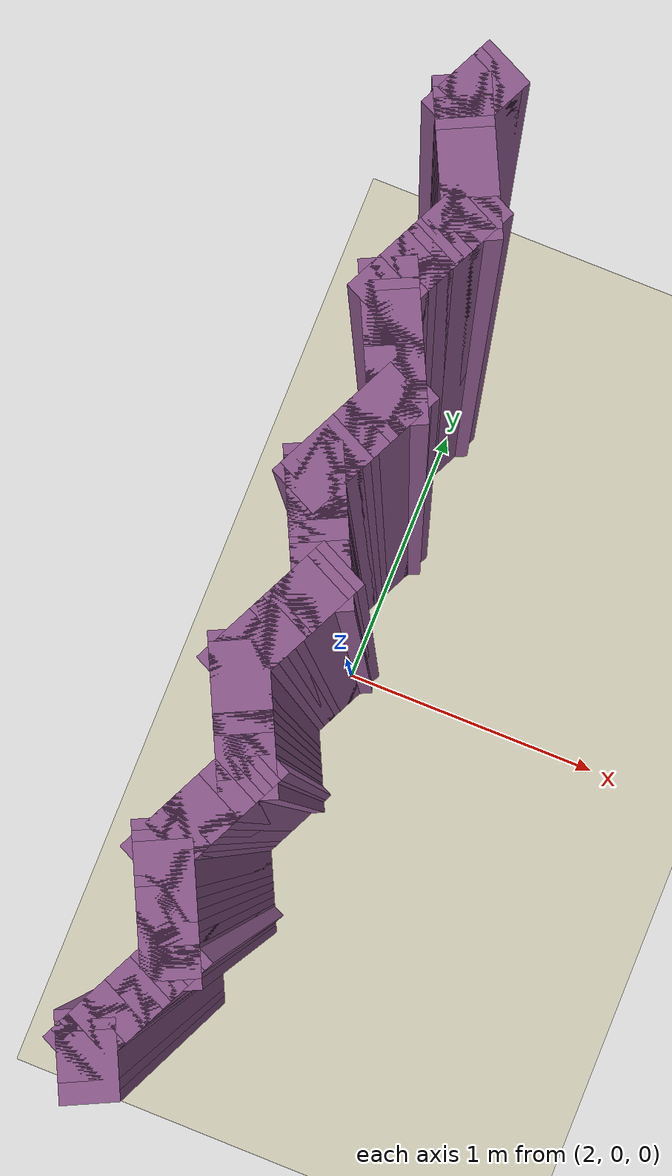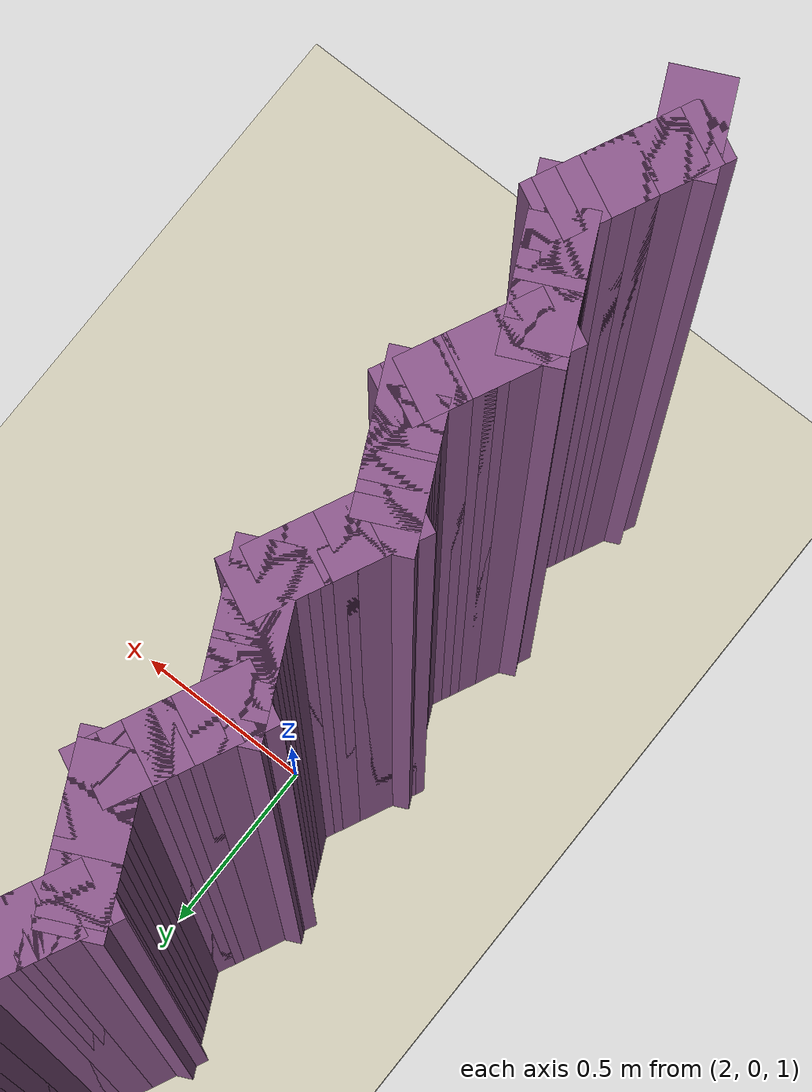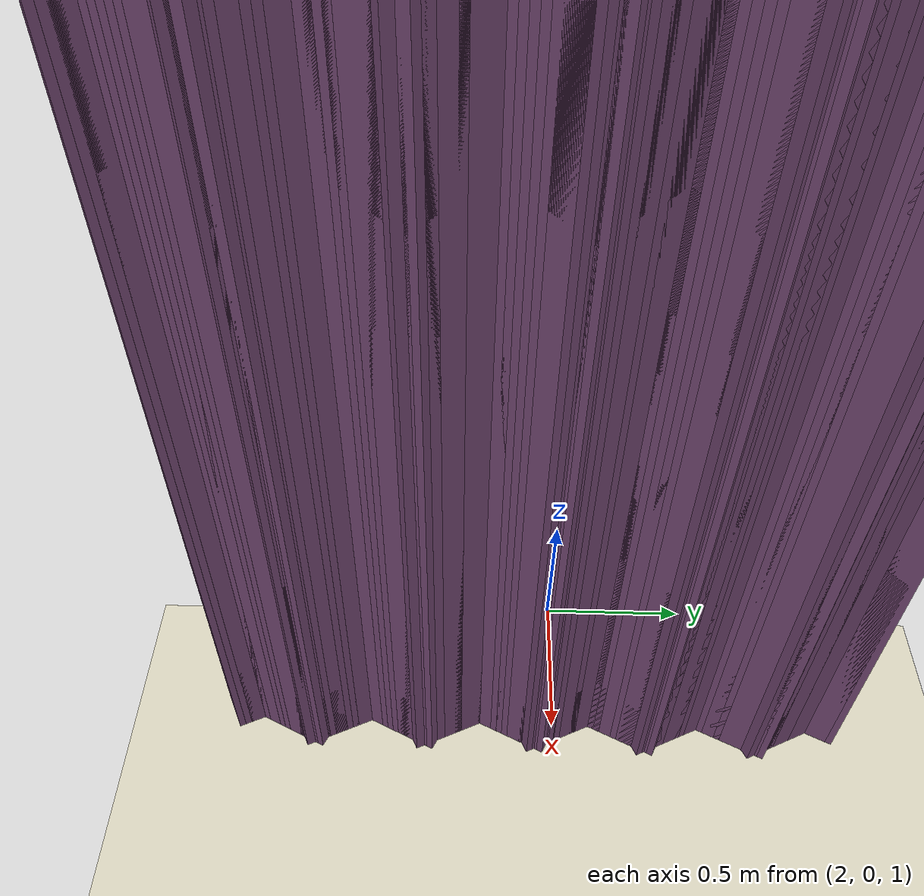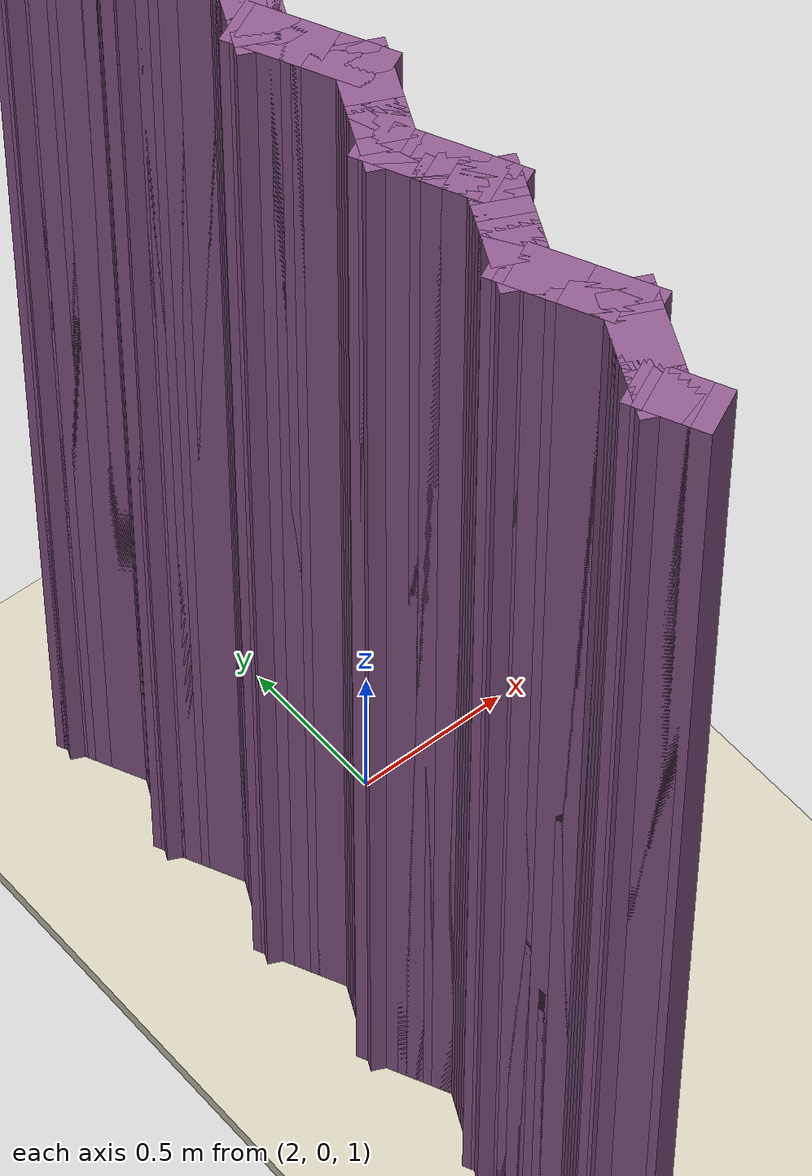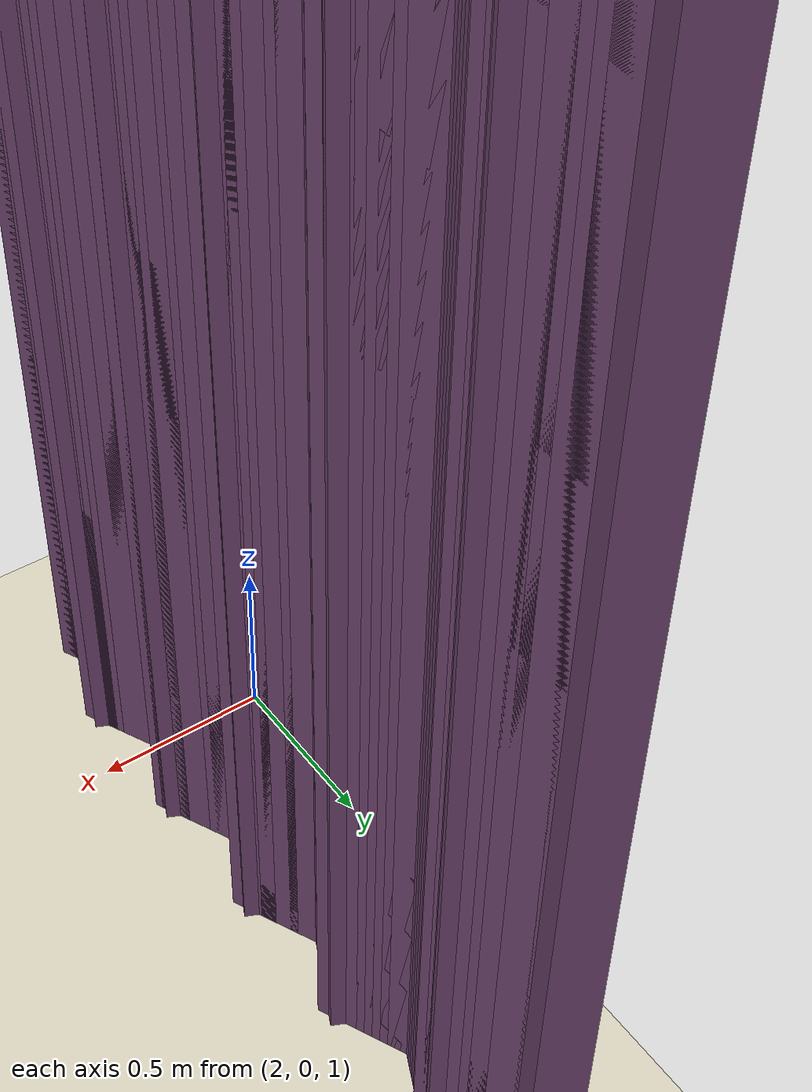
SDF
<sdf version="1.9">
 <world name="p5_serrated">
  <model name="floor">
   <static>true</static>
   <link name="link">
    <collision name="c"><geometry><box><size>10.0 12.0 0.05</size></box></geometry></collision>
    <visual name="v">
     <geometry><box><size>10.0 12.0 0.05</size></box></geometry>
     <material><ambient>0.82 0.80 0.72 1</ambient><diffuse>0.82 0.80 0.72 1</diffuse></material>
    </visual>
   </link>
  </model>
  <model name="wall_107">
   <static>true</static>
   <pose>1.9100 -1.3125 2.0000 0 0 2.01832</pose>
   <link name="link">
    <collision name="c"><geometry><box><size>0.1777 0.1500 4.0000</size></box></geometry></collision>
    <visual name="v">
     <geometry><box><size>0.1777 0.1500 4.0000</size></box></geometry>
     <material><ambient>0.55 0.35 0.55 1</ambient><diffuse>0.55 0.35 0.55 1</diffuse></material>
    </visual>
   </link>
  </model>
  <model name="wall_108">
   <static>true</static>
   <pose>1.8980 -1.2875 2.0000 0 0 2.01832</pose>
   <link name="link">
    <collision name="c"><geometry><box><size>0.1777 0.1500 4.0000</size></box></geometry></collision>
    <visual name="v">
     <geometry><box><size>0.1777 0.1500 4.0000</size></box></geometry>
     <material><ambient>0.55 0.35 0.55 1</ambient><diffuse>0.55 0.35 0.55 1</diffuse></material>
    </visual>
   </link>
  </model>
  <model name="wall_109">
   <static>true</static>
   <pose>1.8860 -1.2625 2.0000 0 0 2.01832</pose>
   <link name="link">
    <collision name="c"><geometry><box><size>0.1777 0.1500 4.0000</size></box></geometry></collision>
    <visual name="v">
     <geometry><box><size>0.1777 0.1500 4.0000</size></box></geometry>
     <material><ambient>0.55 0.35 0.55 1</ambient><diffuse>0.55 0.35 0.55 1</diffuse></material>
    </visual>
   </link>
  </model>
  <model name="wall_110">
   <static>true</static>
   <pose>1.8860 -1.2375 2.0000 0 0 1.12328</pose>
   <link name="link">
    <collision name="c"><geometry><box><size>0.1777 0.1500 4.0000</size></box></geometry></collision>
    <visual name="v">
     <geometry><box><size>0.1777 0.1500 4.0000</size></box></geometry>
     <material><ambient>0.55 0.35 0.55 1</ambient><diffuse>0.55 0.35 0.55 1</diffuse></material>
    </visual>
   </link>
  </model>
  <model name="wall_111">
   <static>true</static>
   <pose>1.8980 -1.2125 2.0000 0 0 1.12328</pose>
   <link name="link">
    <collision name="c"><geometry><box><size>0.1777 0.1500 4.0000</size></box></geometry></collision>
    <visual name="v">
     <geometry><box><size>0.1777 0.1500 4.0000</size></box></geometry>
     <material><ambient>0.55 0.35 0.55 1</ambient><diffuse>0.55 0.35 0.55 1</diffuse></material>
    </visual>
   </link>
  </model>
  <model name="wall_112">
   <static>true</static>
   <pose>1.9100 -1.1875 2.0000 0 0 1.12328</pose>
   <link name="link">
    <collision name="c"><geometry><box><size>0.1777 0.1500 4.0000</size></box></geometry></collision>
    <visual name="v">
     <geometry><box><size>0.1777 0.1500 4.0000</size></box></geometry>
     <material><ambient>0.55 0.35 0.55 1</ambient><diffuse>0.55 0.35 0.55 1</diffuse></material>
    </visual>
   </link>
  </model>
  <model name="wall_113">
   <static>true</static>
   <pose>1.9220 -1.1625 2.0000 0 0 1.12328</pose>
   <link name="link">
    <collision name="c"><geometry><box><size>0.1777 0.1500 4.0000</size></box></geometry></collision>
    <visual name="v">
     <geometry><box><size>0.1777 0.1500 4.0000</size></box></geometry>
     <material><ambient>0.55 0.35 0.55 1</ambient><diffuse>0.55 0.35 0.55 1</diffuse></material>
    </visual>
   </link>
  </model>
  <model name="wall_114">
   <static>true</static>
   <pose>1.9340 -1.1375 2.0000 0 0 1.12328</pose>
   <link name="link">
    <collision name="c"><geometry><box><size>0.1777 0.1500 4.0000</size></box></geometry></collision>
    <visual name="v">
     <geometry><box><size>0.1777 0.1500 4.0000</size></box></geometry>
     <material><ambient>0.55 0.35 0.55 1</ambient><diffuse>0.55 0.35 0.55 1</diffuse></material>
    </visual>
   </link>
  </model>
  <model name="wall_115">
   <static>true</static>
   <pose>1.9460 -1.1125 2.0000 0 0 1.12328</pose>
   <link name="link">
    <collision name="c"><geometry><box><size>0.1777 0.1500 4.0000</size></box></geometry></collision>
    <visual name="v">
     <geometry><box><size>0.1777 0.1500 4.0000</size></box></geometry>
     <material><ambient>0.55 0.35 0.55 1</ambient><diffuse>0.55 0.35 0.55 1</diffuse></material>
    </visual>
   </link>
  </model>
  <model name="wall_116">
   <static>true</static>
   <pose>1.9580 -1.0875 2.0000 0 0 1.12328</pose>
   <link name="link">
    <collision name="c"><geometry><box><size>0.1777 0.1500 4.0000</size></box></geometry></collision>
    <visual name="v">
     <geometry><box><size>0.1777 0.1500 4.0000</size></box></geometry>
     <material><ambient>0.55 0.35 0.55 1</ambient><diffuse>0.55 0.35 0.55 1</diffuse></material>
    </visual>
   </link>
  </model>
  <model name="wall_117">
   <static>true</static>
   <pose>1.9700 -1.0625 2.0000 0 0 1.12328</pose>
   <link name="link">
    <collision name="c"><geometry><box><size>0.1777 0.1500 4.0000</size></box></geometry></collision>
    <visual name="v">
     <geometry><box><size>0.1777 0.1500 4.0000</size></box></geometry>
     <material><ambient>0.55 0.35 0.55 1</ambient><diffuse>0.55 0.35 0.55 1</diffuse></material>
    </visual>
   </link>
  </model>
  <model name="wall_118">
   <static>true</static>
   <pose>1.9820 -1.0375 2.0000 0 0 1.12328</pose>
   <link name="link">
    <collision name="c"><geometry><box><size>0.1777 0.1500 4.0000</size></box></geometry></collision>
    <visual name="v">
     <geometry><box><size>0.1777 0.1500 4.0000</size></box></geometry>
     <material><ambient>0.55 0.35 0.55 1</ambient><diffuse>0.55 0.35 0.55 1</diffuse></material>
    </visual>
   </link>
  </model>
  <model name="wall_119">
   <static>true</static>
   <pose>1.9940 -1.0125 2.0000 0 0 1.12328</pose>
   <link name="link">
    <collision name="c"><geometry><box><size>0.1777 0.1500 4.0000</size></box></geometry></collision>
    <visual name="v">
     <geometry><box><size>0.1777 0.1500 4.0000</size></box></geometry>
     <material><ambient>0.55 0.35 0.55 1</ambient><diffuse>0.55 0.35 0.55 1</diffuse></material>
    </visual>
   </link>
  </model>
  <model name="wall_120">
   <static>true</static>
   <pose>1.9940 -0.9875 2.0000 0 0 2.01832</pose>
   <link name="link">
    <collision name="c"><geometry><box><size>0.1777 0.1500 4.0000</size></box></geometry></collision>
    <visual name="v">
     <geometry><box><size>0.1777 0.1500 4.0000</size></box></geometry>
     <material><ambient>0.55 0.35 0.55 1</ambient><diffuse>0.55 0.35 0.55 1</diffuse></material>
    </visual>
   </link>
  </model>
  <model name="wall_121">
   <static>true</static>
   <pose>1.9820 -0.9625 2.0000 0 0 2.01832</pose>
   <link name="link">
    <collision name="c"><geometry><box><size>0.1777 0.1500 4.0000</size></box></geometry></collision>
    <visual name="v">
     <geometry><box><size>0.1777 0.1500 4.0000</size></box></geometry>
     <material><ambient>0.55 0.35 0.55 1</ambient><diffuse>0.55 0.35 0.55 1</diffuse></material>
    </visual>
   </link>
  </model>
  <model name="wall_122">
   <static>true</static>
   <pose>1.9700 -0.9375 2.0000 0 0 2.01832</pose>
   <link name="link">
    <collision name="c"><geometry><box><size>0.1777 0.1500 4.0000</size></box></geometry></collision>
    <visual name="v">
     <geometry><box><size>0.1777 0.1500 4.0000</size></box></geometry>
     <material><ambient>0.55 0.35 0.55 1</ambient><diffuse>0.55 0.35 0.55 1</diffuse></material>
    </visual>
   </link>
  </model>
  <model name="wall_123">
   <static>true</static>
   <pose>1.9580 -0.9125 2.0000 0 0 2.01832</pose>
   <link name="link">
    <collision name="c"><geometry><box><size>0.1777 0.1500 4.0000</size></box></geometry></collision>
    <visual name="v">
     <geometry><box><size>0.1777 0.1500 4.0000</size></box></geometry>
     <material><ambient>0.55 0.35 0.55 1</ambient><diffuse>0.55 0.35 0.55 1</diffuse></material>
    </visual>
   </link>
  </model>
  <model name="wall_124">
   <static>true</static>
   <pose>1.9460 -0.8875 2.0000 0 0 2.01832</pose>
   <link name="link">
    <collision name="c"><geometry><box><size>0.1777 0.1500 4.0000</size></box></geometry></collision>
    <visual name="v">
     <geometry><box><size>0.1777 0.1500 4.0000</size></box></geometry>
     <material><ambient>0.55 0.35 0.55 1</ambient><diffuse>0.55 0.35 0.55 1</diffuse></material>
    </visual>
   </link>
  </model>
  <model name="wall_125">
   <static>true</static>
   <pose>1.9340 -0.8625 2.0000 0 0 2.01832</pose>
   <link name="link">
    <collision name="c"><geometry><box><size>0.1777 0.1500 4.0000</size></box></geometry></collision>
    <visual name="v">
     <geometry><box><size>0.1777 0.1500 4.0000</size></box></geometry>
     <material><ambient>0.55 0.35 0.55 1</ambient><diffuse>0.55 0.35 0.55 1</diffuse></material>
    </visual>
   </link>
  </model>
  <model name="wall_126">
   <static>true</static>
   <pose>1.9220 -0.8375 2.0000 0 0 2.01832</pose>
   <link name="link">
    <collision name="c"><geometry><box><size>0.1777 0.1500 4.0000</size></box></geometry></collision>
    <visual name="v">
     <geometry><box><size>0.1777 0.1500 4.0000</size></box></geometry>
     <material><ambient>0.55 0.35 0.55 1</ambient><diffuse>0.55 0.35 0.55 1</diffuse></material>
    </visual>
   </link>
  </model>
  <model name="wall_127">
   <static>true</static>
   <pose>1.9100 -0.8125 2.0000 0 0 2.01832</pose>
   <link name="link">
    <collision name="c"><geometry><box><size>0.1777 0.1500 4.0000</size></box></geometry></collision>
    <visual name="v">
     <geometry><box><size>0.1777 0.1500 4.0000</size></box></geometry>
     <material><ambient>0.55 0.35 0.55 1</ambient><diffuse>0.55 0.35 0.55 1</diffuse></material>
    </visual>
   </link>
  </model>
  <model name="wall_128">
   <static>true</static>
   <pose>1.8980 -0.7875 2.0000 0 0 2.01832</pose>
   <link name="link">
    <collision name="c"><geometry><box><size>0.1777 0.1500 4.0000</size></box></geometry></collision>
    <visual name="v">
     <geometry><box><size>0.1777 0.1500 4.0000</size></box></geometry>
     <material><ambient>0.55 0.35 0.55 1</ambient><diffuse>0.55 0.35 0.55 1</diffuse></material>
    </visual>
   </link>
  </model>
  <model name="wall_129">
   <static>true</static>
   <pose>1.8860 -0.7625 2.0000 0 0 2.01832</pose>
   <link name="link">
    <collision name="c"><geometry><box><size>0.1777 0.1500 4.0000</size></box></geometry></collision>
    <visual name="v">
     <geometry><box><size>0.1777 0.1500 4.0000</size></box></geometry>
     <material><ambient>0.55 0.35 0.55 1</ambient><diffuse>0.55 0.35 0.55 1</diffuse></material>
    </visual>
   </link>
  </model>
  <model name="wall_130">
   <static>true</static>
   <pose>1.8860 -0.7375 2.0000 0 0 1.12328</pose>
   <link name="link">
    <collision name="c"><geometry><box><size>0.1777 0.1500 4.0000</size></box></geometry></collision>
    <visual name="v">
     <geometry><box><size>0.1777 0.1500 4.0000</size></box></geometry>
     <material><ambient>0.55 0.35 0.55 1</ambient><diffuse>0.55 0.35 0.55 1</diffuse></material>
    </visual>
   </link>
  </model>
  <model name="wall_131">
   <static>true</static>
   <pose>1.8980 -0.7125 2.0000 0 0 1.12328</pose>
   <link name="link">
    <collision name="c"><geometry><box><size>0.1777 0.1500 4.0000</size></box></geometry></collision>
    <visual name="v">
     <geometry><box><size>0.1777 0.1500 4.0000</size></box></geometry>
     <material><ambient>0.55 0.35 0.55 1</ambient><diffuse>0.55 0.35 0.55 1</diffuse></material>
    </visual>
   </link>
  </model>
  <model name="wall_132">
   <static>true</static>
   <pose>1.9100 -0.6875 2.0000 0 0 1.12328</pose>
   <link name="link">
    <collision name="c"><geometry><box><size>0.1777 0.1500 4.0000</size></box></geometry></collision>
    <visual name="v">
     <geometry><box><size>0.1777 0.1500 4.0000</size></box></geometry>
     <material><ambient>0.55 0.35 0.55 1</ambient><diffuse>0.55 0.35 0.55 1</diffuse></material>
    </visual>
   </link>
  </model>
  <model name="wall_133">
   <static>true</static>
   <pose>1.9220 -0.6625 2.0000 0 0 1.12328</pose>
   <link name="link">
    <collision name="c"><geometry><box><size>0.1777 0.1500 4.0000</size></box></geometry></collision>
    <visual name="v">
     <geometry><box><size>0.1777 0.1500 4.0000</size></box></geometry>
     <material><ambient>0.55 0.35 0.55 1</ambient><diffuse>0.55 0.35 0.55 1</diffuse></material>
    </visual>
   </link>
  </model>
  <model name="wall_134">
   <static>true</static>
   <pose>1.9340 -0.6375 2.0000 0 0 1.12328</pose>
   <link name="link">
    <collision name="c"><geometry><box><size>0.1777 0.1500 4.0000</size></box></geometry></collision>
    <visual name="v">
     <geometry><box><size>0.1777 0.1500 4.0000</size></box></geometry>
     <material><ambient>0.55 0.35 0.55 1</ambient><diffuse>0.55 0.35 0.55 1</diffuse></material>
    </visual>
   </link>
  </model>
  <model name="wall_135">
   <static>true</static>
   <pose>1.9460 -0.6125 2.0000 0 0 1.12328</pose>
   <link name="link">
    <collision name="c"><geometry><box><size>0.1777 0.1500 4.0000</size></box></geometry></collision>
    <visual name="v">
     <geometry><box><size>0.1777 0.1500 4.0000</size></box></geometry>
     <material><ambient>0.55 0.35 0.55 1</ambient><diffuse>0.55 0.35 0.55 1</diffuse></material>
    </visual>
   </link>
  </model>
  <model name="wall_136">
   <static>true</static>
   <pose>1.9580 -0.5875 2.0000 0 0 1.12328</pose>
   <link name="link">
    <collision name="c"><geometry><box><size>0.1777 0.1500 4.0000</size></box></geometry></collision>
    <visual name="v">
     <geometry><box><size>0.1777 0.1500 4.0000</size></box></geometry>
     <material><ambient>0.55 0.35 0.55 1</ambient><diffuse>0.55 0.35 0.55 1</diffuse></material>
    </visual>
   </link>
  </model>
  <model name="wall_137">
   <static>true</static>
   <pose>1.9700 -0.5625 2.0000 0 0 1.12328</pose>
   <link name="link">
    <collision name="c"><geometry><box><size>0.1777 0.1500 4.0000</size></box></geometry></collision>
    <visual name="v">
     <geometry><box><size>0.1777 0.1500 4.0000</size></box></geometry>
     <material><ambient>0.55 0.35 0.55 1</ambient><diffuse>0.55 0.35 0.55 1</diffuse></material>
    </visual>
   </link>
  </model>
  <model name="wall_138">
   <static>true</static>
   <pose>1.9820 -0.5375 2.0000 0 0 1.12328</pose>
   <link name="link">
    <collision name="c"><geometry><box><size>0.1777 0.1500 4.0000</size></box></geometry></collision>
    <visual name="v">
     <geometry><box><size>0.1777 0.1500 4.0000</size></box></geometry>
     <material><ambient>0.55 0.35 0.55 1</ambient><diffuse>0.55 0.35 0.55 1</diffuse></material>
    </visual>
   </link>
  </model>
  <model name="wall_139">
   <static>true</static>
   <pose>1.9940 -0.5125 2.0000 0 0 1.12328</pose>
   <link name="link">
    <collision name="c"><geometry><box><size>0.1777 0.1500 4.0000</size></box></geometry></collision>
    <visual name="v">
     <geometry><box><size>0.1777 0.1500 4.0000</size></box></geometry>
     <material><ambient>0.55 0.35 0.55 1</ambient><diffuse>0.55 0.35 0.55 1</diffuse></material>
    </visual>
   </link>
  </model>
  <model name="wall_140">
   <static>true</static>
   <pose>1.9940 -0.4875 2.0000 0 0 2.01832</pose>
   <link name="link">
    <collision name="c"><geometry><box><size>0.1777 0.1500 4.0000</size></box></geometry></collision>
    <visual name="v">
     <geometry><box><size>0.1777 0.1500 4.0000</size></box></geometry>
     <material><ambient>0.55 0.35 0.55 1</ambient><diffuse>0.55 0.35 0.55 1</diffuse></material>
    </visual>
   </link>
  </model>
  <model name="wall_141">
   <static>true</static>
   <pose>1.9820 -0.4625 2.0000 0 0 2.01832</pose>
   <link name="link">
    <collision name="c"><geometry><box><size>0.1777 0.1500 4.0000</size></box></geometry></collision>
    <visual name="v">
     <geometry><box><size>0.1777 0.1500 4.0000</size></box></geometry>
     <material><ambient>0.55 0.35 0.55 1</ambient><diffuse>0.55 0.35 0.55 1</diffuse></material>
    </visual>
   </link>
  </model>
  <model name="wall_142">
   <static>true</static>
   <pose>1.9700 -0.4375 2.0000 0 0 2.01832</pose>
   <link name="link">
    <collision name="c"><geometry><box><size>0.1777 0.1500 4.0000</size></box></geometry></collision>
    <visual name="v">
     <geometry><box><size>0.1777 0.1500 4.0000</size></box></geometry>
     <material><ambient>0.55 0.35 0.55 1</ambient><diffuse>0.55 0.35 0.55 1</diffuse></material>
    </visual>
   </link>
  </model>
  <model name="wall_143">
   <static>true</static>
   <pose>1.9580 -0.4125 2.0000 0 0 2.01832</pose>
   <link name="link">
    <collision name="c"><geometry><box><size>0.1777 0.1500 4.0000</size></box></geometry></collision>
    <visual name="v">
     <geometry><box><size>0.1777 0.1500 4.0000</size></box></geometry>
     <material><ambient>0.55 0.35 0.55 1</ambient><diffuse>0.55 0.35 0.55 1</diffuse></material>
    </visual>
   </link>
  </model>
  <model name="wall_144">
   <static>true</static>
   <pose>1.9460 -0.3875 2.0000 0 0 2.01832</pose>
   <link name="link">
    <collision name="c"><geometry><box><size>0.1777 0.1500 4.0000</size></box></geometry></collision>
    <visual name="v">
     <geometry><box><size>0.1777 0.1500 4.0000</size></box></geometry>
     <material><ambient>0.55 0.35 0.55 1</ambient><diffuse>0.55 0.35 0.55 1</diffuse></material>
    </visual>
   </link>
  </model>
  <model name="wall_145">
   <static>true</static>
   <pose>1.9340 -0.3625 2.0000 0 0 2.01832</pose>
   <link name="link">
    <collision name="c"><geometry><box><size>0.1777 0.1500 4.0000</size></box></geometry></collision>
    <visual name="v">
     <geometry><box><size>0.1777 0.1500 4.0000</size></box></geometry>
     <material><ambient>0.55 0.35 0.55 1</ambient><diffuse>0.55 0.35 0.55 1</diffuse></material>
    </visual>
   </link>
  </model>
  <model name="wall_146">
   <static>true</static>
   <pose>1.9220 -0.3375 2.0000 0 0 2.01832</pose>
   <link name="link">
    <collision name="c"><geometry><box><size>0.1777 0.1500 4.0000</size></box></geometry></collision>
    <visual name="v">
     <geometry><box><size>0.1777 0.1500 4.0000</size></box></geometry>
     <material><ambient>0.55 0.35 0.55 1</ambient><diffuse>0.55 0.35 0.55 1</diffuse></material>
    </visual>
   </link>
  </model>
  <model name="wall_147">
   <static>true</static>
   <pose>1.9100 -0.3125 2.0000 0 0 2.01832</pose>
   <link name="link">
    <collision name="c"><geometry><box><size>0.1777 0.1500 4.0000</size></box></geometry></collision>
    <visual name="v">
     <geometry><box><size>0.1777 0.1500 4.0000</size></box></geometry>
     <material><ambient>0.55 0.35 0.55 1</ambient><diffuse>0.55 0.35 0.55 1</diffuse></material>
    </visual>
   </link>
  </model>
  <model name="wall_148">
   <static>true</static>
   <pose>1.8980 -0.2875 2.0000 0 0 2.01832</pose>
   <link name="link">
    <collision name="c"><geometry><box><size>0.1777 0.1500 4.0000</size></box></geometry></collision>
    <visual name="v">
     <geometry><box><size>0.1777 0.1500 4.0000</size></box></geometry>
     <material><ambient>0.55 0.35 0.55 1</ambient><diffuse>0.55 0.35 0.55 1</diffuse></material>
    </visual>
   </link>
  </model>
  <model name="wall_149">
   <static>true</static>
   <pose>1.8860 -0.2625 2.0000 0 0 2.01832</pose>
   <link name="link">
    <collision name="c"><geometry><box><size>0.1777 0.1500 4.0000</size></box></geometry></collision>
    <visual name="v">
     <geometry><box><size>0.1777 0.1500 4.0000</size></box></geometry>
     <material><ambient>0.55 0.35 0.55 1</ambient><diffuse>0.55 0.35 0.55 1</diffuse></material>
    </visual>
   </link>
  </model>
  <model name="wall_150">
   <static>true</static>
   <pose>1.8860 -0.2375 2.0000 0 0 1.12328</pose>
   <link name="link">
    <collision name="c"><geometry><box><size>0.1777 0.1500 4.0000</size></box></geometry></collision>
    <visual name="v">
     <geometry><box><size>0.1777 0.1500 4.0000</size></box></geometry>
     <material><ambient>0.55 0.35 0.55 1</ambient><diffuse>0.55 0.35 0.55 1</diffuse></material>
    </visual>
   </link>
  </model>
  <model name="wall_151">
   <static>true</static>
   <pose>1.8980 -0.2125 2.0000 0 0 1.12328</pose>
   <link name="link">
    <collision name="c"><geometry><box><size>0.1777 0.1500 4.0000</size></box></geometry></collision>
    <visual name="v">
     <geometry><box><size>0.1777 0.1500 4.0000</size></box></geometry>
     <material><ambient>0.55 0.35 0.55 1</ambient><diffuse>0.55 0.35 0.55 1</diffuse></material>
    </visual>
   </link>
  </model>
  <model name="wall_152">
   <static>true</static>
   <pose>1.9100 -0.1875 2.0000 0 0 1.12328</pose>
   <link name="link">
    <collision name="c"><geometry><box><size>0.1777 0.1500 4.0000</size></box></geometry></collision>
    <visual name="v">
     <geometry><box><size>0.1777 0.1500 4.0000</size></box></geometry>
     <material><ambient>0.55 0.35 0.55 1</ambient><diffuse>0.55 0.35 0.55 1</diffuse></material>
    </visual>
   </link>
  </model>
  <model name="wall_153">
   <static>true</static>
   <pose>1.9220 -0.1625 2.0000 0 0 1.12328</pose>
   <link name="link">
    <collision name="c"><geometry><box><size>0.1777 0.1500 4.0000</size></box></geometry></collision>
    <visual name="v">
     <geometry><box><size>0.1777 0.1500 4.0000</size></box></geometry>
     <material><ambient>0.55 0.35 0.55 1</ambient><diffuse>0.55 0.35 0.55 1</diffuse></material>
    </visual>
   </link>
  </model>
  <model name="wall_154">
   <static>true</static>
   <pose>1.9340 -0.1375 2.0000 0 0 1.12328</pose>
   <link name="link">
    <collision name="c"><geometry><box><size>0.1777 0.1500 4.0000</size></box></geometry></collision>
    <visual name="v">
     <geometry><box><size>0.1777 0.1500 4.0000</size></box></geometry>
     <material><ambient>0.55 0.35 0.55 1</ambient><diffuse>0.55 0.35 0.55 1</diffuse></material>
    </visual>
   </link>
  </model>
  <model name="wall_155">
   <static>true</static>
   <pose>1.9460 -0.1125 2.0000 0 0 1.12328</pose>
   <link name="link">
    <collision name="c"><geometry><box><size>0.1777 0.1500 4.0000</size></box></geometry></collision>
    <visual name="v">
     <geometry><box><size>0.1777 0.1500 4.0000</size></box></geometry>
     <material><ambient>0.55 0.35 0.55 1</ambient><diffuse>0.55 0.35 0.55 1</diffuse></material>
    </visual>
   </link>
  </model>
  <model name="wall_156">
   <static>true</static>
   <pose>1.9580 -0.0875 2.0000 0 0 1.12328</pose>
   <link name="link">
    <collision name="c"><geometry><box><size>0.1777 0.1500 4.0000</size></box></geometry></collision>
    <visual name="v">
     <geometry><box><size>0.1777 0.1500 4.0000</size></box></geometry>
     <material><ambient>0.55 0.35 0.55 1</ambient><diffuse>0.55 0.35 0.55 1</diffuse></material>
    </visual>
   </link>
  </model>
  <model name="wall_157">
   <static>true</static>
   <pose>1.9700 -0.0625 2.0000 0 0 1.12328</pose>
   <link name="link">
    <collision name="c"><geometry><box><size>0.1777 0.1500 4.0000</size></box></geometry></collision>
    <visual name="v">
     <geometry><box><size>0.1777 0.1500 4.0000</size></box></geometry>
     <material><ambient>0.55 0.35 0.55 1</ambient><diffuse>0.55 0.35 0.55 1</diffuse></material>
    </visual>
   </link>
  </model>
  <model name="wall_158">
   <static>true</static>
   <pose>1.9820 -0.0375 2.0000 0 0 1.12328</pose>
   <link name="link">
    <collision name="c"><geometry><box><size>0.1777 0.1500 4.0000</size></box></geometry></collision>
    <visual name="v">
     <geometry><box><size>0.1777 0.1500 4.0000</size></box></geometry>
     <material><ambient>0.55 0.35 0.55 1</ambient><diffuse>0.55 0.35 0.55 1</diffuse></material>
    </visual>
   </link>
  </model>
  <model name="wall_159">
   <static>true</static>
   <pose>1.9940 -0.0125 2.0000 0 0 1.12328</pose>
   <link name="link">
    <collision name="c"><geometry><box><size>0.1777 0.1500 4.0000</size></box></geometry></collision>
    <visual name="v">
     <geometry><box><size>0.1777 0.1500 4.0000</size></box></geometry>
     <material><ambient>0.55 0.35 0.55 1</ambient><diffuse>0.55 0.35 0.55 1</diffuse></material>
    </visual>
   </link>
  </model>
  <model name="wall_160">
   <static>true</static>
   <pose>1.9940 0.0125 2.0000 0 0 2.01832</pose>
   <link name="link">
    <collision name="c"><geometry><box><size>0.1777 0.1500 4.0000</size></box></geometry></collision>
    <visual name="v">
     <geometry><box><size>0.1777 0.1500 4.0000</size></box></geometry>
     <material><ambient>0.55 0.35 0.55 1</ambient><diffuse>0.55 0.35 0.55 1</diffuse></material>
    </visual>
   </link>
  </model>
  <model name="wall_161">
   <static>true</static>
   <pose>1.9820 0.0375 2.0000 0 0 2.01832</pose>
   <link name="link">
    <collision name="c"><geometry><box><size>0.1777 0.1500 4.0000</size></box></geometry></collision>
    <visual name="v">
     <geometry><box><size>0.1777 0.1500 4.0000</size></box></geometry>
     <material><ambient>0.55 0.35 0.55 1</ambient><diffuse>0.55 0.35 0.55 1</diffuse></material>
    </visual>
   </link>
  </model>
  <model name="wall_162">
   <static>true</static>
   <pose>1.9700 0.0625 2.0000 0 0 2.01832</pose>
   <link name="link">
    <collision name="c"><geometry><box><size>0.1777 0.1500 4.0000</size></box></geometry></collision>
    <visual name="v">
     <geometry><box><size>0.1777 0.1500 4.0000</size></box></geometry>
     <material><ambient>0.55 0.35 0.55 1</ambient><diffuse>0.55 0.35 0.55 1</diffuse></material>
    </visual>
   </link>
  </model>
  <model name="wall_163">
   <static>true</static>
   <pose>1.9580 0.0875 2.0000 0 0 2.01832</pose>
   <link name="link">
    <collision name="c"><geometry><box><size>0.1777 0.1500 4.0000</size></box></geometry></collision>
    <visual name="v">
     <geometry><box><size>0.1777 0.1500 4.0000</size></box></geometry>
     <material><ambient>0.55 0.35 0.55 1</ambient><diffuse>0.55 0.35 0.55 1</diffuse></material>
    </visual>
   </link>
  </model>
  <model name="wall_164">
   <static>true</static>
   <pose>1.9460 0.1125 2.0000 0 0 2.01832</pose>
   <link name="link">
    <collision name="c"><geometry><box><size>0.1777 0.1500 4.0000</size></box></geometry></collision>
    <visual name="v">
     <geometry><box><size>0.1777 0.1500 4.0000</size></box></geometry>
     <material><ambient>0.55 0.35 0.55 1</ambient><diffuse>0.55 0.35 0.55 1</diffuse></material>
    </visual>
   </link>
  </model>
  <model name="wall_165">
   <static>true</static>
   <pose>1.9340 0.1375 2.0000 0 0 2.01832</pose>
   <link name="link">
    <collision name="c"><geometry><box><size>0.1777 0.1500 4.0000</size></box></geometry></collision>
    <visual name="v">
     <geometry><box><size>0.1777 0.1500 4.0000</size></box></geometry>
     <material><ambient>0.55 0.35 0.55 1</ambient><diffuse>0.55 0.35 0.55 1</diffuse></material>
    </visual>
   </link>
  </model>
  <model name="wall_166">
   <static>true</static>
   <pose>1.9220 0.1625 2.0000 0 0 2.01832</pose>
   <link name="link">
    <collision name="c"><geometry><box><size>0.1777 0.1500 4.0000</size></box></geometry></collision>
    <visual name="v">
     <geometry><box><size>0.1777 0.1500 4.0000</size></box></geometry>
     <material><ambient>0.55 0.35 0.55 1</ambient><diffuse>0.55 0.35 0.55 1</diffuse></material>
    </visual>
   </link>
  </model>
  <model name="wall_167">
   <static>true</static>
   <pose>1.9100 0.1875 2.0000 0 0 2.01832</pose>
   <link name="link">
    <collision name="c"><geometry><box><size>0.1777 0.1500 4.0000</size></box></geometry></collision>
    <visual name="v">
     <geometry><box><size>0.1777 0.1500 4.0000</size></box></geometry>
     <material><ambient>0.55 0.35 0.55 1</ambient><diffuse>0.55 0.35 0.55 1</diffuse></material>
    </visual>
   </link>
  </model>
  <model name="wall_168">
   <static>true</static>
   <pose>1.8980 0.2125 2.0000 0 0 2.01832</pose>
   <link name="link">
    <collision name="c"><geometry><box><size>0.1777 0.1500 4.0000</size></box></geometry></collision>
    <visual name="v">
     <geometry><box><size>0.1777 0.1500 4.0000</size></box></geometry>
     <material><ambient>0.55 0.35 0.55 1</ambient><diffuse>0.55 0.35 0.55 1</diffuse></material>
    </visual>
   </link>
  </model>
  <model name="wall_169">
   <static>true</static>
   <pose>1.8860 0.2375 2.0000 0 0 2.01832</pose>
   <link name="link">
    <collision name="c"><geometry><box><size>0.1777 0.1500 4.0000</size></box></geometry></collision>
    <visual name="v">
     <geometry><box><size>0.1777 0.1500 4.0000</size></box></geometry>
     <material><ambient>0.55 0.35 0.55 1</ambient><diffuse>0.55 0.35 0.55 1</diffuse></material>
    </visual>
   </link>
  </model>
  <model name="wall_170">
   <static>true</static>
   <pose>1.8860 0.2625 2.0000 0 0 1.12328</pose>
   <link name="link">
    <collision name="c"><geometry><box><size>0.1777 0.1500 4.0000</size></box></geometry></collision>
    <visual name="v">
     <geometry><box><size>0.1777 0.1500 4.0000</size></box></geometry>
     <material><ambient>0.55 0.35 0.55 1</ambient><diffuse>0.55 0.35 0.55 1</diffuse></material>
    </visual>
   </link>
  </model>
  <model name="wall_171">
   <static>true</static>
   <pose>1.8980 0.2875 2.0000 0 0 1.12328</pose>
   <link name="link">
    <collision name="c"><geometry><box><size>0.1777 0.1500 4.0000</size></box></geometry></collision>
    <visual name="v">
     <geometry><box><size>0.1777 0.1500 4.0000</size></box></geometry>
     <material><ambient>0.55 0.35 0.55 1</ambient><diffuse>0.55 0.35 0.55 1</diffuse></material>
    </visual>
   </link>
  </model>
  <model name="wall_172">
   <static>true</static>
   <pose>1.9100 0.3125 2.0000 0 0 1.12328</pose>
   <link name="link">
    <collision name="c"><geometry><box><size>0.1777 0.1500 4.0000</size></box></geometry></collision>
    <visual name="v">
     <geometry><box><size>0.1777 0.1500 4.0000</size></box></geometry>
     <material><ambient>0.55 0.35 0.55 1</ambient><diffuse>0.55 0.35 0.55 1</diffuse></material>
    </visual>
   </link>
  </model>
  <model name="wall_173">
   <static>true</static>
   <pose>1.9220 0.3375 2.0000 0 0 1.12328</pose>
   <link name="link">
    <collision name="c"><geometry><box><size>0.1777 0.1500 4.0000</size></box></geometry></collision>
    <visual name="v">
     <geometry><box><size>0.1777 0.1500 4.0000</size></box></geometry>
     <material><ambient>0.55 0.35 0.55 1</ambient><diffuse>0.55 0.35 0.55 1</diffuse></material>
    </visual>
   </link>
  </model>
  <model name="wall_174">
   <static>true</static>
   <pose>1.9340 0.3625 2.0000 0 0 1.12328</pose>
   <link name="link">
    <collision name="c"><geometry><box><size>0.1777 0.1500 4.0000</size></box></geometry></collision>
    <visual name="v">
     <geometry><box><size>0.1777 0.1500 4.0000</size></box></geometry>
     <material><ambient>0.55 0.35 0.55 1</ambient><diffuse>0.55 0.35 0.55 1</diffuse></material>
    </visual>
   </link>
  </model>
  <model name="wall_175">
   <static>true</static>
   <pose>1.9460 0.3875 2.0000 0 0 1.12328</pose>
   <link name="link">
    <collision name="c"><geometry><box><size>0.1777 0.1500 4.0000</size></box></geometry></collision>
    <visual name="v">
     <geometry><box><size>0.1777 0.1500 4.0000</size></box></geometry>
     <material><ambient>0.55 0.35 0.55 1</ambient><diffuse>0.55 0.35 0.55 1</diffuse></material>
    </visual>
   </link>
  </model>
  <model name="wall_176">
   <static>true</static>
   <pose>1.9580 0.4125 2.0000 0 0 1.12328</pose>
   <link name="link">
    <collision name="c"><geometry><box><size>0.1777 0.1500 4.0000</size></box></geometry></collision>
    <visual name="v">
     <geometry><box><size>0.1777 0.1500 4.0000</size></box></geometry>
     <material><ambient>0.55 0.35 0.55 1</ambient><diffuse>0.55 0.35 0.55 1</diffuse></material>
    </visual>
   </link>
  </model>
  <model name="wall_177">
   <static>true</static>
   <pose>1.9700 0.4375 2.0000 0 0 1.12328</pose>
   <link name="link">
    <collision name="c"><geometry><box><size>0.1777 0.1500 4.0000</size></box></geometry></collision>
    <visual name="v">
     <geometry><box><size>0.1777 0.1500 4.0000</size></box></geometry>
     <material><ambient>0.55 0.35 0.55 1</ambient><diffuse>0.55 0.35 0.55 1</diffuse></material>
    </visual>
   </link>
  </model>
  <model name="wall_178">
   <static>true</static>
   <pose>1.9820 0.4625 2.0000 0 0 1.12328</pose>
   <link name="link">
    <collision name="c"><geometry><box><size>0.1777 0.1500 4.0000</size></box></geometry></collision>
    <visual name="v">
     <geometry><box><size>0.1777 0.1500 4.0000</size></box></geometry>
     <material><ambient>0.55 0.35 0.55 1</ambient><diffuse>0.55 0.35 0.55 1</diffuse></material>
    </visual>
   </link>
  </model>
  <model name="wall_179">
   <static>true</static>
   <pose>1.9940 0.4875 2.0000 0 0 1.12328</pose>
   <link name="link">
    <collision name="c"><geometry><box><size>0.1777 0.1500 4.0000</size></box></geometry></collision>
    <visual name="v">
     <geometry><box><size>0.1777 0.1500 4.0000</size></box></geometry>
     <material><ambient>0.55 0.35 0.55 1</ambient><diffuse>0.55 0.35 0.55 1</diffuse></material>
    </visual>
   </link>
  </model>
  <model name="wall_180">
   <static>true</static>
   <pose>1.9940 0.5125 2.0000 0 0 2.01832</pose>
   <link name="link">
    <collision name="c"><geometry><box><size>0.1777 0.1500 4.0000</size></box></geometry></collision>
    <visual name="v">
     <geometry><box><size>0.1777 0.1500 4.0000</size></box></geometry>
     <material><ambient>0.55 0.35 0.55 1</ambient><diffuse>0.55 0.35 0.55 1</diffuse></material>
    </visual>
   </link>
  </model>
  <model name="wall_181">
   <static>true</static>
   <pose>1.9820 0.5375 2.0000 0 0 2.01832</pose>
   <link name="link">
    <collision name="c"><geometry><box><size>0.1777 0.1500 4.0000</size></box></geometry></collision>
    <visual name="v">
     <geometry><box><size>0.1777 0.1500 4.0000</size></box></geometry>
     <material><ambient>0.55 0.35 0.55 1</ambient><diffuse>0.55 0.35 0.55 1</diffuse></material>
    </visual>
   </link>
  </model>
  <model name="wall_182">
   <static>true</static>
   <pose>1.9700 0.5625 2.0000 0 0 2.01832</pose>
   <link name="link">
    <collision name="c"><geometry><box><size>0.1777 0.1500 4.0000</size></box></geometry></collision>
    <visual name="v">
     <geometry><box><size>0.1777 0.1500 4.0000</size></box></geometry>
     <material><ambient>0.55 0.35 0.55 1</ambient><diffuse>0.55 0.35 0.55 1</diffuse></material>
    </visual>
   </link>
  </model>
  <model name="wall_183">
   <static>true</static>
   <pose>1.9580 0.5875 2.0000 0 0 2.01832</pose>
   <link name="link">
    <collision name="c"><geometry><box><size>0.1777 0.1500 4.0000</size></box></geometry></collision>
    <visual name="v">
     <geometry><box><size>0.1777 0.1500 4.0000</size></box></geometry>
     <material><ambient>0.55 0.35 0.55 1</ambient><diffuse>0.55 0.35 0.55 1</diffuse></material>
    </visual>
   </link>
  </model>
  <model name="wall_184">
   <static>true</static>
   <pose>1.9460 0.6125 2.0000 0 0 2.01832</pose>
   <link name="link">
    <collision name="c"><geometry><box><size>0.1777 0.1500 4.0000</size></box></geometry></collision>
    <visual name="v">
     <geometry><box><size>0.1777 0.1500 4.0000</size></box></geometry>
     <material><ambient>0.55 0.35 0.55 1</ambient><diffuse>0.55 0.35 0.55 1</diffuse></material>
    </visual>
   </link>
  </model>
  <model name="wall_185">
   <static>true</static>
   <pose>1.9340 0.6375 2.0000 0 0 2.01832</pose>
   <link name="link">
    <collision name="c"><geometry><box><size>0.1777 0.1500 4.0000</size></box></geometry></collision>
    <visual name="v">
     <geometry><box><size>0.1777 0.1500 4.0000</size></box></geometry>
     <material><ambient>0.55 0.35 0.55 1</ambient><diffuse>0.55 0.35 0.55 1</diffuse></material>
    </visual>
   </link>
  </model>
  <model name="wall_186">
   <static>true</static>
   <pose>1.9220 0.6625 2.0000 0 0 2.01832</pose>
   <link name="link">
    <collision name="c"><geometry><box><size>0.1777 0.1500 4.0000</size></box></geometry></collision>
    <visual name="v">
     <geometry><box><size>0.1777 0.1500 4.0000</size></box></geometry>
     <material><ambient>0.55 0.35 0.55 1</ambient><diffuse>0.55 0.35 0.55 1</diffuse></material>
    </visual>
   </link>
  </model>
  <model name="wall_187">
   <static>true</static>
   <pose>1.9100 0.6875 2.0000 0 0 2.01832</pose>
   <link name="link">
    <collision name="c"><geometry><box><size>0.1777 0.1500 4.0000</size></box></geometry></collision>
    <visual name="v">
     <geometry><box><size>0.1777 0.1500 4.0000</size></box></geometry>
     <material><ambient>0.55 0.35 0.55 1</ambient><diffuse>0.55 0.35 0.55 1</diffuse></material>
    </visual>
   </link>
  </model>
  <model name="wall_188">
   <static>true</static>
   <pose>1.8980 0.7125 2.0000 0 0 2.01832</pose>
   <link name="link">
    <collision name="c"><geometry><box><size>0.1777 0.1500 4.0000</size></box></geometry></collision>
    <visual name="v">
     <geometry><box><size>0.1777 0.1500 4.0000</size></box></geometry>
     <material><ambient>0.55 0.35 0.55 1</ambient><diffuse>0.55 0.35 0.55 1</diffuse></material>
    </visual>
   </link>
  </model>
  <model name="wall_189">
   <static>true</static>
   <pose>1.8860 0.7375 2.0000 0 0 2.01832</pose>
   <link name="link">
    <collision name="c"><geometry><box><size>0.1777 0.1500 4.0000</size></box></geometry></collision>
    <visual name="v">
     <geometry><box><size>0.1777 0.1500 4.0000</size></box></geometry>
     <material><ambient>0.55 0.35 0.55 1</ambient><diffuse>0.55 0.35 0.55 1</diffuse></material>
    </visual>
   </link>
  </model>
  <model name="wall_190">
   <static>true</static>
   <pose>1.8860 0.7625 2.0000 0 0 1.12328</pose>
   <link name="link">
    <collision name="c"><geometry><box><size>0.1777 0.1500 4.0000</size></box></geometry></collision>
    <visual name="v">
     <geometry><box><size>0.1777 0.1500 4.0000</size></box></geometry>
     <material><ambient>0.55 0.35 0.55 1</ambient><diffuse>0.55 0.35 0.55 1</diffuse></material>
    </visual>
   </link>
  </model>
  <model name="wall_191">
   <static>true</static>
   <pose>1.8980 0.7875 2.0000 0 0 1.12328</pose>
   <link name="link">
    <collision name="c"><geometry><box><size>0.1777 0.1500 4.0000</size></box></geometry></collision>
    <visual name="v">
     <geometry><box><size>0.1777 0.1500 4.0000</size></box></geometry>
     <material><ambient>0.55 0.35 0.55 1</ambient><diffuse>0.55 0.35 0.55 1</diffuse></material>
    </visual>
   </link>
  </model>
  <model name="wall_192">
   <static>true</static>
   <pose>1.9100 0.8125 2.0000 0 0 1.12328</pose>
   <link name="link">
    <collision name="c"><geometry><box><size>0.1777 0.1500 4.0000</size></box></geometry></collision>
    <visual name="v">
     <geometry><box><size>0.1777 0.1500 4.0000</size></box></geometry>
     <material><ambient>0.55 0.35 0.55 1</ambient><diffuse>0.55 0.35 0.55 1</diffuse></material>
    </visual>
   </link>
  </model>
  <model name="wall_193">
   <static>true</static>
   <pose>1.9220 0.8375 2.0000 0 0 1.12328</pose>
   <link name="link">
    <collision name="c"><geometry><box><size>0.1777 0.1500 4.0000</size></box></geometry></collision>
    <visual name="v">
     <geometry><box><size>0.1777 0.1500 4.0000</size></box></geometry>
     <material><ambient>0.55 0.35 0.55 1</ambient><diffuse>0.55 0.35 0.55 1</diffuse></material>
    </visual>
   </link>
  </model>
  <model name="wall_194">
   <static>true</static>
   <pose>1.9340 0.8625 2.0000 0 0 1.12328</pose>
   <link name="link">
    <collision name="c"><geometry><box><size>0.1777 0.1500 4.0000</size></box></geometry></collision>
    <visual name="v">
     <geometry><box><size>0.1777 0.1500 4.0000</size></box></geometry>
     <material><ambient>0.55 0.35 0.55 1</ambient><diffuse>0.55 0.35 0.55 1</diffuse></material>
    </visual>
   </link>
  </model>
  <model name="wall_195">
   <static>true</static>
   <pose>1.9460 0.8875 2.0000 0 0 1.12328</pose>
   <link name="link">
    <collision name="c"><geometry><box><size>0.1777 0.1500 4.0000</size></box></geometry></collision>
    <visual name="v">
     <geometry><box><size>0.1777 0.1500 4.0000</size></box></geometry>
     <material><ambient>0.55 0.35 0.55 1</ambient><diffuse>0.55 0.35 0.55 1</diffuse></material>
    </visual>
   </link>
  </model>
  <model name="wall_196">
   <static>true</static>
   <pose>1.9580 0.9125 2.0000 0 0 1.12328</pose>
   <link name="link">
    <collision name="c"><geometry><box><size>0.1777 0.1500 4.0000</size></box></geometry></collision>
    <visual name="v">
     <geometry><box><size>0.1777 0.1500 4.0000</size></box></geometry>
     <material><ambient>0.55 0.35 0.55 1</ambient><diffuse>0.55 0.35 0.55 1</diffuse></material>
    </visual>
   </link>
  </model>
  <model name="wall_197">
   <static>true</static>
   <pose>1.9700 0.9375 2.0000 0 0 1.12328</pose>
   <link name="link">
    <collision name="c"><geometry><box><size>0.1777 0.1500 4.0000</size></box></geometry></collision>
    <visual name="v">
     <geometry><box><size>0.1777 0.1500 4.0000</size></box></geometry>
     <material><ambient>0.55 0.35 0.55 1</ambient><diffuse>0.55 0.35 0.55 1</diffuse></material>
    </visual>
   </link>
  </model>
  <model name="wall_198">
   <static>true</static>
   <pose>1.9820 0.9625 2.0000 0 0 1.12328</pose>
   <link name="link">
    <collision name="c"><geometry><box><size>0.1777 0.1500 4.0000</size></box></geometry></collision>
    <visual name="v">
     <geometry><box><size>0.1777 0.1500 4.0000</size></box></geometry>
     <material><ambient>0.55 0.35 0.55 1</ambient><diffuse>0.55 0.35 0.55 1</diffuse></material>
    </visual>
   </link>
  </model>
  <model name="wall_199">
   <static>true</static>
   <pose>1.9940 0.9875 2.0000 0 0 1.12328</pose>
   <link name="link">
    <collision name="c"><geometry><box><size>0.1777 0.1500 4.0000</size></box></geometry></collision>
    <visual name="v">
     <geometry><box><size>0.1777 0.1500 4.0000</size></box></geometry>
     <material><ambient>0.55 0.35 0.55 1</ambient><diffuse>0.55 0.35 0.55 1</diffuse></material>
    </visual>
   </link>
  </model>
  <model name="wall_200">
   <static>true</static>
   <pose>1.9940 1.0125 2.0000 0 0 2.01832</pose>
   <link name="link">
    <collision name="c"><geometry><box><size>0.1777 0.1500 4.0000</size></box></geometry></collision>
    <visual name="v">
     <geometry><box><size>0.1777 0.1500 4.0000</size></box></geometry>
     <material><ambient>0.55 0.35 0.55 1</ambient><diffuse>0.55 0.35 0.55 1</diffuse></material>
    </visual>
   </link>
  </model>
  <model name="wall_201">
   <static>true</static>
   <pose>1.9820 1.0375 2.0000 0 0 2.01832</pose>
   <link name="link">
    <collision name="c"><geometry><box><size>0.1777 0.1500 4.0000</size></box></geometry></collision>
    <visual name="v">
     <geometry><box><size>0.1777 0.1500 4.0000</size></box></geometry>
     <material><ambient>0.55 0.35 0.55 1</ambient><diffuse>0.55 0.35 0.55 1</diffuse></material>
    </visual>
   </link>
  </model>
  <model name="wall_202">
   <static>true</static>
   <pose>1.9700 1.0625 2.0000 0 0 2.01832</pose>
   <link name="link">
    <collision name="c"><geometry><box><size>0.1777 0.1500 4.0000</size></box></geometry></collision>
    <visual name="v">
     <geometry><box><size>0.1777 0.1500 4.0000</size></box></geometry>
     <material><ambient>0.55 0.35 0.55 1</ambient><diffuse>0.55 0.35 0.55 1</diffuse></material>
    </visual>
   </link>
  </model>
  <model name="wall_203">
   <static>true</static>
   <pose>1.9580 1.0875 2.0000 0 0 2.01832</pose>
   <link name="link">
    <collision name="c"><geometry><box><size>0.1777 0.1500 4.0000</size></box></geometry></collision>
    <visual name="v">
     <geometry><box><size>0.1777 0.1500 4.0000</size></box></geometry>
     <material><ambient>0.55 0.35 0.55 1</ambient><diffuse>0.55 0.35 0.55 1</diffuse></material>
    </visual>
   </link>
  </model>
  <model name="wall_204">
   <static>true</static>
   <pose>1.9460 1.1125 2.0000 0 0 2.01832</pose>
   <link name="link">
    <collision name="c"><geometry><box><size>0.1777 0.1500 4.0000</size></box></geometry></collision>
    <visual name="v">
     <geometry><box><size>0.1777 0.1500 4.0000</size></box></geometry>
     <material><ambient>0.55 0.35 0.55 1</ambient><diffuse>0.55 0.35 0.55 1</diffuse></material>
    </visual>
   </link>
  </model>
  <model name="wall_205">
   <static>true</static>
   <pose>1.9340 1.1375 2.0000 0 0 2.01832</pose>
   <link name="link">
    <collision name="c"><geometry><box><size>0.1777 0.1500 4.0000</size></box></geometry></collision>
    <visual name="v">
     <geometry><box><size>0.1777 0.1500 4.0000</size></box></geometry>
     <material><ambient>0.55 0.35 0.55 1</ambient><diffuse>0.55 0.35 0.55 1</diffuse></material>
    </visual>
   </link>
  </model>
  <model name="wall_206">
   <static>true</static>
   <pose>1.9220 1.1625 2.0000 0 0 2.01832</pose>
   <link name="link">
    <collision name="c"><geometry><box><size>0.1777 0.1500 4.0000</size></box></geometry></collision>
    <visual name="v">
     <geometry><box><size>0.1777 0.1500 4.0000</size></box></geometry>
     <material><ambient>0.55 0.35 0.55 1</ambient><diffuse>0.55 0.35 0.55 1</diffuse></material>
    </visual>
   </link>
  </model>
  <model name="wall_207">
   <static>true</static>
   <pose>1.9100 1.1875 2.0000 0 0 2.01832</pose>
   <link name="link">
    <collision name="c"><geometry><box><size>0.1777 0.1500 4.0000</size></box></geometry></collision>
    <visual name="v">
     <geometry><box><size>0.1777 0.1500 4.0000</size></box></geometry>
     <material><ambient>0.55 0.35 0.55 1</ambient><diffuse>0.55 0.35 0.55 1</diffuse></material>
    </visual>
   </link>
  </model>
  <model name="wall_208">
   <static>true</static>
   <pose>1.8980 1.2125 2.0000 0 0 2.01832</pose>
   <link name="link">
    <collision name="c"><geometry><box><size>0.1777 0.1500 4.0000</size></box></geometry></collision>
    <visual name="v">
     <geometry><box><size>0.1777 0.1500 4.0000</size></box></geometry>
     <material><ambient>0.55 0.35 0.55 1</ambient><diffuse>0.55 0.35 0.55 1</diffuse></material>
    </visual>
   </link>
  </model>
  <model name="wall_209">
   <static>true</static>
   <pose>1.8860 1.2375 2.0000 0 0 2.01832</pose>
   <link name="link">
    <collision name="c"><geometry><box><size>0.1777 0.1500 4.0000</size></box></geometry></collision>
    <visual name="v">
     <geometry><box><size>0.1777 0.1500 4.0000</size></box></geometry>
     <material><ambient>0.55 0.35 0.55 1</ambient><diffuse>0.55 0.35 0.55 1</diffuse></material>
    </visual>
   </link>
  </model>
  <model name="wall_210">
   <static>true</static>
   <pose>1.8860 1.2625 2.0000 0 0 1.12328</pose>
   <link name="link">
    <collision name="c"><geometry><box><size>0.1777 0.1500 4.0000</size></box></geometry></collision>
    <visual name="v">
     <geometry><box><size>0.1777 0.1500 4.0000</size></box></geometry>
     <material><ambient>0.55 0.35 0.55 1</ambient><diffuse>0.55 0.35 0.55 1</diffuse></material>
    </visual>
   </link>
  </model>
  <model name="wall_211">
   <static>true</static>
   <pose>1.8980 1.2875 2.0000 0 0 1.12328</pose>
   <link name="link">
    <collision name="c"><geometry><box><size>0.1777 0.1500 4.0000</size></box></geometry></collision>
    <visual name="v">
     <geometry><box><size>0.1777 0.1500 4.0000</size></box></geometry>
     <material><ambient>0.55 0.35 0.55 1</ambient><diffuse>0.55 0.35 0.55 1</diffuse></material>
    </visual>
   </link>
  </model>
  <model name="wall_212">
   <static>true</static>
   <pose>1.9100 1.3125 2.0000 0 0 1.12328</pose>
   <link name="link">
    <collision name="c"><geometry><box><size>0.1777 0.1500 4.0000</size></box></geometry></collision>
    <visual name="v">
     <geometry><box><size>0.1777 0.1500 4.0000</size></box></geometry>
     <material><ambient>0.55 0.35 0.55 1</ambient><diffuse>0.55 0.35 0.55 1</diffuse></material>
    </visual>
   </link>
  </model>
 </world>
</sdf>
